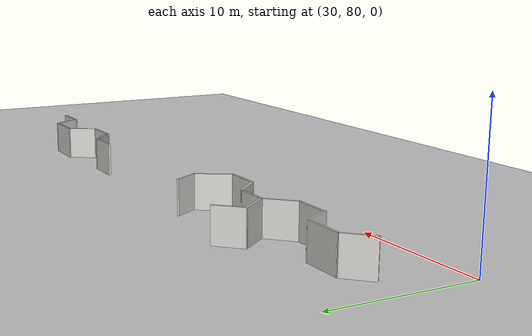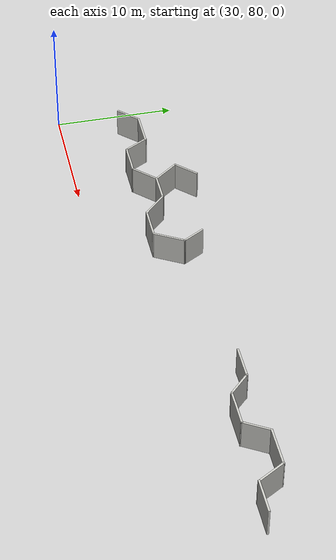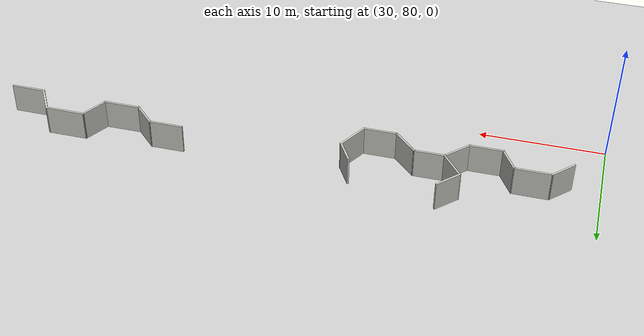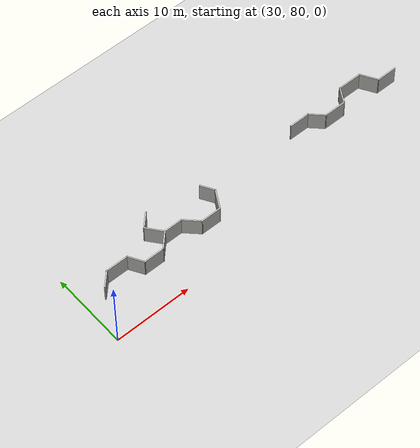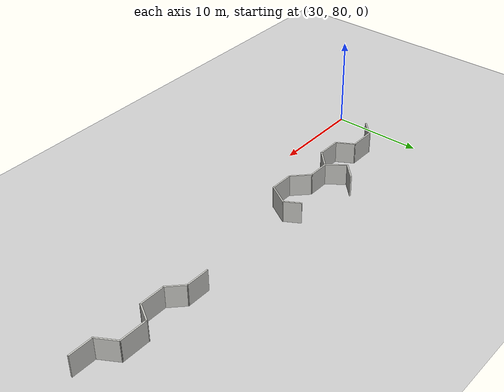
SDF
<sdf version="1.6">
 <world name="default">
  <model name="ground_plane">
   <pose>50 50 0 0 -0 0</pose>
   <static>1</static>
   <link name="link">
    <collision name="collision">
     <geometry><plane><normal>0 0 1</normal><size>100 100</size></plane></geometry>
     <surface><friction><ode><mu>100</mu><mu2>50</mu2></ode></friction></surface>
    </collision>
    <visual name="visual">
     <cast_shadows>0</cast_shadows>
     <geometry><plane><normal>0 0 1</normal><size>100 100</size></plane></geometry>
     <material>
      <script><uri>file://media/materials/scripts/gazebo.material</uri><name>Gazebo/Grey</name></script>
     </material>
    </visual>
   </link>
  </model>
  <model name="maze_1_0">
   <pose>55.5762 81.9377 0 0 -0 3.14</pose>
   <link name="Wall_112">
    <collision name="Wall_112_Collision">
     <geometry><box><size>3.25 0.15 2.5</size></box></geometry>
     <pose>0 0 1.25 0 -0 0</pose>
    </collision>
    <visual name="Wall_112_Visual">
     <pose>0 0 1.25 0 -0 0</pose>
     <geometry><box><size>3.25 0.15 2.5</size></box></geometry>
     <material>
      <script><uri>file://media/materials/scripts/gazebo.material</uri><name>Gazebo/CeilingTiled</name></script>
      <ambient>1 1 1 1</ambient>
     </material>
     <meta><layer>0</layer></meta>
    </visual>
    <pose>-16.4783 -6.40245 0 0 -0 3.14159</pose>
   </link>
   <link name="Wall_113">
    <collision name="Wall_113_Collision">
     <geometry><box><size>2.5 0.15 2.5</size></box></geometry>
     <pose>0 0 1.25 0 -0 0</pose>
    </collision>
    <visual name="Wall_113_Visual">
     <pose>0 0 1.25 0 -0 0</pose>
     <geometry><box><size>2.5 0.15 2.5</size></box></geometry>
     <material>
      <script><uri>file://media/materials/scripts/gazebo.material</uri><name>Gazebo/CeilingTiled</name></script>
      <ambient>1 1 1 1</ambient>
     </material>
     <meta><layer>0</layer></meta>
    </visual>
    <pose>-18.6158 -5.38487 0 0 -0 2.0944</pose>
   </link>
   <link name="Wall_114">
    <collision name="Wall_114_Collision">
     <geometry><box><size>2.75 0.15 2.5</size></box></geometry>
     <pose>0 0 1.25 0 -0 0</pose>
    </collision>
    <visual name="Wall_114_Visual">
     <pose>0 0 1.25 0 -0 0</pose>
     <geometry><box><size>2.75 0.15 2.5</size></box></geometry>
     <material>
      <script><uri>file://media/materials/scripts/gazebo.material</uri><name>Gazebo/CeilingTiled</name></script>
      <ambient>1 1 1 1</ambient>
     </material>
     <meta><layer>0</layer></meta>
    </visual>
    <pose>-20.5033 -4.36729 0 0 -0 3.14159</pose>
   </link>
   <link name="Wall_130">
    <collision name="Wall_130_Collision">
     <geometry><box><size>2.75 0.15 2.5</size></box></geometry>
     <pose>0 0 1.25 0 -0 0</pose>
    </collision>
    <visual name="Wall_130_Visual">
     <pose>0 0 1.25 0 -0 0</pose>
     <geometry><box><size>2.75 0.15 2.5</size></box></geometry>
     <material>
      <script><uri>file://media/materials/scripts/gazebo.material</uri><name>Gazebo/CeilingTiled</name></script>
      <ambient>1 1 1 1</ambient>
     </material>
     <meta><layer>0</layer></meta>
    </visual>
    <pose>-8.17192 -6.00916 0 0 -0 3.14159</pose>
   </link>
   <link name="Wall_131">
    <collision name="Wall_131_Collision">
     <geometry><box><size>2.25 0.15 2.5</size></box></geometry>
     <pose>0 0 1.25 0 -0 0</pose>
    </collision>
    <visual name="Wall_131_Visual">
     <pose>0 0 1.25 0 -0 0</pose>
     <geometry><box><size>2.25 0.15 2.5</size></box></geometry>
     <material>
      <script><uri>file://media/materials/scripts/gazebo.material</uri><name>Gazebo/CeilingTiled</name></script>
      <ambient>1 1 1 1</ambient>
     </material>
     <meta><layer>0</layer></meta>
    </visual>
    <pose>-10.2144 -5.2667 0 0 -0 2.35619</pose>
   </link>
   <link name="Wall_132">
    <collision name="Wall_132_Collision">
     <geometry><box><size>3 0.15 2.5</size></box></geometry>
     <pose>0 0 1.25 0 -0 0</pose>
    </collision>
    <visual name="Wall_132_Visual">
     <pose>0 0 1.25 0 -0 0</pose>
     <geometry><box><size>3 0.15 2.5</size></box></geometry>
     <material>
      <script><uri>file://media/materials/scripts/gazebo.material</uri><name>Gazebo/CeilingTiled</name></script>
      <ambient>1 1 1 1</ambient>
     </material>
     <meta><layer>0</layer></meta>
    </visual>
    <pose>-12.3818 -4.52424 0 0 -0 3.14159</pose>
   </link>
   <link name="Wall_133">
    <collision name="Wall_133_Collision">
     <geometry><box><size>2.33753 0.15 2.5</size></box></geometry>
     <pose>0 0 1.25 0 -0 0</pose>
    </collision>
    <visual name="Wall_133_Visual">
     <pose>0 0 1.25 0 -0 0</pose>
     <geometry><box><size>2.33753 0.15 2.5</size></box></geometry>
     <material>
      <script><uri>file://media/materials/scripts/gazebo.material</uri><name>Gazebo/CeilingTiled</name></script>
      <ambient>1 1 1 1</ambient>
     </material>
     <meta><layer>0</layer></meta>
    </visual>
    <pose>-14.3676 -5.46334 0 0 -0 -2.10906</pose>
   </link>
   <link name="Wall_141">
    <collision name="Wall_141_Collision">
     <geometry><box><size>2 0.15 2.5</size></box></geometry>
     <pose>0 0 1.25 0 -0 0</pose>
    </collision>
    <visual name="Wall_141_Visual">
     <pose>0 0 1.25 0 -0 0</pose>
     <geometry><box><size>2 0.15 2.5</size></box></geometry>
     <material>
      <script><uri>file://media/materials/scripts/gazebo.material</uri><name>Gazebo/CeilingTiled</name></script>
      <ambient>1 1 1 1</ambient>
     </material>
     <meta><layer>0</layer></meta>
    </visual>
    <pose>6.14243 -5.67216 0 0 -0 2.0944</pose>
   </link>
   <link name="Wall_142">
    <collision name="Wall_142_Collision">
     <geometry><box><size>2.75 0.15 2.5</size></box></geometry>
     <pose>0 0 1.25 0 -0 0</pose>
    </collision>
    <visual name="Wall_142_Visual">
     <pose>0 0 1.25 0 -0 0</pose>
     <geometry><box><size>2.75 0.15 2.5</size></box></geometry>
     <material>
      <script><uri>file://media/materials/scripts/gazebo.material</uri><name>Gazebo/CeilingTiled</name></script>
      <ambient>1 1 1 1</ambient>
     </material>
     <meta><layer>0</layer></meta>
    </visual>
    <pose>6.32993 -3.74525 0 0 -0 1.0472</pose>
   </link>
   <link name="Wall_143">
    <collision name="Wall_143_Collision">
     <geometry><box><size>2.75 0.15 2.5</size></box></geometry>
     <pose>0 0 1.25 0 -0 0</pose>
    </collision>
    <visual name="Wall_143_Visual">
     <pose>0 0 1.25 0 -0 0</pose>
     <geometry><box><size>2.75 0.15 2.5</size></box></geometry>
     <material>
      <script><uri>file://media/materials/scripts/gazebo.material</uri><name>Gazebo/CeilingTiled</name></script>
      <ambient>1 1 1 1</ambient>
     </material>
     <meta><layer>0</layer></meta>
    </visual>
    <pose>8.27993 -2.61942 0 0 -0 0</pose>
   </link>
   <link name="Wall_144">
    <collision name="Wall_144_Collision">
     <geometry><box><size>2.5 0.15 2.5</size></box></geometry>
     <pose>0 0 1.25 0 -0 0</pose>
    </collision>
    <visual name="Wall_144_Visual">
     <pose>0 0 1.25 0 -0 0</pose>
     <geometry><box><size>2.5 0.15 2.5</size></box></geometry>
     <material>
      <script><uri>file://media/materials/scripts/gazebo.material</uri><name>Gazebo/CeilingTiled</name></script>
      <ambient>1 1 1 1</ambient>
     </material>
     <meta><layer>0</layer></meta>
    </visual>
    <pose>10.4108 -3.45027 0 0 -0 -0.785398</pose>
   </link>
   <link name="Wall_145">
    <collision name="Wall_145_Collision">
     <geometry><box><size>2.5 0.15 2.5</size></box></geometry>
     <pose>0 0 1.25 0 -0 0</pose>
    </collision>
    <visual name="Wall_145_Visual">
     <pose>0 0 1.25 0 -0 0</pose>
     <geometry><box><size>2.5 0.15 2.5</size></box></geometry>
     <material>
      <script><uri>file://media/materials/scripts/gazebo.material</uri><name>Gazebo/CeilingTiled</name></script>
      <ambient>1 1 1 1</ambient>
     </material>
     <meta><layer>0</layer></meta>
    </visual>
    <pose>12.4166 -4.28112 0 0 -0 0</pose>
   </link>
   <link name="Wall_146">
    <collision name="Wall_146_Collision">
     <geometry><box><size>2.5 0.15 2.5</size></box></geometry>
     <pose>0 0 1.25 0 -0 0</pose>
    </collision>
    <visual name="Wall_146_Visual">
     <pose>0 0 1.25 0 -0 0</pose>
     <geometry><box><size>2.5 0.15 2.5</size></box></geometry>
     <material>
      <script><uri>file://media/materials/scripts/gazebo.material</uri><name>Gazebo/CeilingTiled</name></script>
      <ambient>1 1 1 1</ambient>
     </material>
     <meta><layer>0</layer></meta>
    </visual>
    <pose>14.4225 -3.45027 0 0 -0 0.785398</pose>
   </link>
   <link name="Wall_147">
    <collision name="Wall_147_Collision">
     <geometry><box><size>2.75 0.15 2.5</size></box></geometry>
     <pose>0 0 1.25 0 -0 0</pose>
    </collision>
    <visual name="Wall_147_Visual">
     <pose>0 0 1.25 0 -0 0</pose>
     <geometry><box><size>2.75 0.15 2.5</size></box></geometry>
     <material>
      <script><uri>file://media/materials/scripts/gazebo.material</uri><name>Gazebo/CeilingTiled</name></script>
      <ambient>1 1 1 1</ambient>
     </material>
     <meta><layer>0</layer></meta>
    </visual>
    <pose>16.5533 -2.61942 0 0 -0 0</pose>
   </link>
   <link name="Wall_148">
    <collision name="Wall_148_Collision">
     <geometry><box><size>2.25 0.15 2.5</size></box></geometry>
     <pose>0 0 1.25 0 -0 0</pose>
    </collision>
    <visual name="Wall_148_Visual">
     <pose>0 0 1.25 0 -0 0</pose>
     <geometry><box><size>2.25 0.15 2.5</size></box></geometry>
     <material>
      <script><uri>file://media/materials/scripts/gazebo.material</uri><name>Gazebo/CeilingTiled</name></script>
      <ambient>1 1 1 1</ambient>
     </material>
     <meta><layer>0</layer></meta>
    </visual>
    <pose>18.3783 -3.52874 0 0 -0 -1.0472</pose>
   </link>
   <link name="Wall_149">
    <collision name="Wall_149_Collision">
     <geometry><box><size>3 0.15 2.5</size></box></geometry>
     <pose>0 0 1.25 0 -0 0</pose>
    </collision>
    <visual name="Wall_149_Visual">
     <pose>0 0 1.25 0 -0 0</pose>
     <geometry><box><size>3 0.15 2.5</size></box></geometry>
     <material>
      <script><uri>file://media/materials/scripts/gazebo.material</uri><name>Gazebo/CeilingTiled</name></script>
      <ambient>1 1 1 1</ambient>
     </material>
     <meta><layer>0</layer></meta>
    </visual>
    <pose>20.3283 -4.43807 0 0 -0 0</pose>
   </link>
   <link name="Wall_150">
    <collision name="Wall_150_Collision">
     <geometry><box><size>2.25 0.15 2.5</size></box></geometry>
     <pose>0 0 1.25 0 -0 0</pose>
    </collision>
    <visual name="Wall_150_Visual">
     <pose>0 0 1.25 0 -0 0</pose>
     <geometry><box><size>2.25 0.15 2.5</size></box></geometry>
     <material>
      <script><uri>file://media/materials/scripts/gazebo.material</uri><name>Gazebo/CeilingTiled</name></script>
      <ambient>1 1 1 1</ambient>
     </material>
     <meta><layer>0</layer></meta>
    </visual>
    <pose>22.4958 -3.69561 0 0 -0 0.785398</pose>
   </link>
   <link name="Wall_175">
    <collision name="Wall_175_Collision">
     <geometry><box><size>2.25 0.15 2.5</size></box></geometry>
     <pose>0 0 1.25 0 -0 0</pose>
    </collision>
    <visual name="Wall_175_Visual">
     <pose>0 0 1.25 0 -0 0</pose>
     <geometry><box><size>2.25 0.15 2.5</size></box></geometry>
     <material>
      <script><uri>file://media/materials/scripts/gazebo.material</uri><name>Gazebo/CeilingTiled</name></script>
      <ambient>1 1 1 1</ambient>
     </material>
     <meta><layer>0</layer></meta>
    </visual>
    <pose>14.3133 -6.90169 0 0 -0 0.785398</pose>
   </link>
   <link name="Wall_176">
    <collision name="Wall_176_Collision">
     <geometry><box><size>2.53139 0.15 2.5</size></box></geometry>
     <pose>0 0 1.25 0 -0 0</pose>
    </collision>
    <visual name="Wall_176_Visual">
     <pose>0 0 1.25 0 -0 0</pose>
     <geometry><box><size>2.53139 0.15 2.5</size></box></geometry>
     <material>
      <script><uri>file://media/materials/scripts/gazebo.material</uri><name>Gazebo/CeilingTiled</name></script>
      <ambient>1 1 1 1</ambient>
     </material>
     <meta><layer>0</layer></meta>
    </visual>
    <pose>14.3237 -5.22017 0 0 -0 2.23296</pose>
   </link>
   <static>1</static>
  </model>
 </world>
</sdf>
